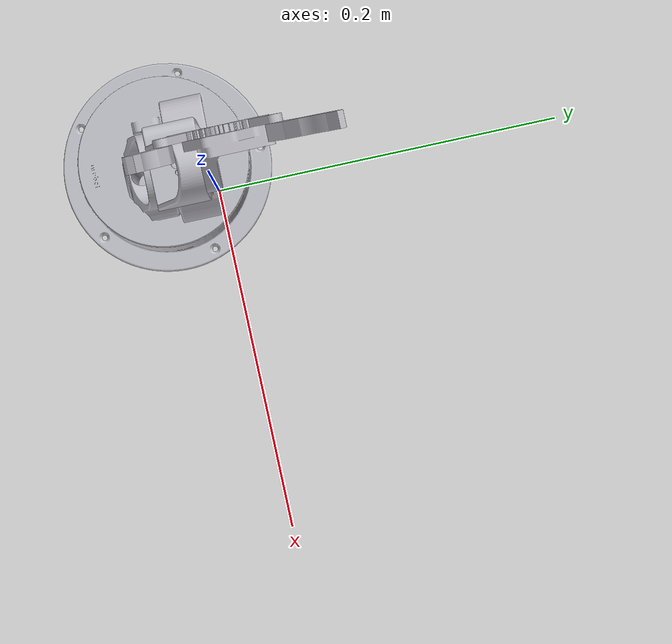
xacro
<?xml version="1.0" ?>
<robot name="robotic_arm" xmlns:xacro="http://www.ros.org/wiki/xacro">

<xacro:include filename="$(find robotic_arm_description)/urdf/materials.xacro" />
<xacro:include filename="$(find robotic_arm_description)/urdf/robotic_arm.trans" />
<xacro:include filename="$(find robotic_arm_description)/urdf/robotic_arm.gazebo" />

<link name="world">

</link>
<link name="base_link">
  <inertial>
    <origin xyz="-0.012591017413675576 -0.02625452248023994 0.01882692231493027" rpy="0 0 0"/>
    <mass value="0.15109268796453854"/>
    <inertia ixx="0.000155" iyy="0.000175" izz="0.000246" ixy="0.0" iyz="-1e-06" ixz="1.4e-05"/>
  </inertial>
  <visual>
    <origin xyz="0 0 0" rpy="0 0 0"/>
    <geometry>
      <mesh filename="package://robotic_arm_description/meshes/base_link.stl" scale="0.001 0.001 0.001"/>
    </geometry>
    <material name="silver"/>
  </visual>
  <collision>
    <origin xyz="0 0 0" rpy="0 0 0"/>
    <geometry>
      <mesh filename="package://robotic_arm_description/meshes/base_link.stl" scale="0.001 0.001 0.001"/>
    </geometry>
  </collision>
</link>
<joint name="fix_joint" type="fixed">
  <parent link="world"/>
  <child link="base_link"/>
</joint>
<link name="WAIST_1">
  <inertial>
    <origin xyz="0.0022441628498335066 0.007590344465981981 0.01877031829177992" rpy="0 0 0"/>
    <mass value="0.07662775042719305"/>
    <inertia ixx="5.2e-05" iyy="6.6e-05" izz="6e-05" ixy="-2e-06" iyz="-7e-06" ixz="-7e-06"/>
  </inertial>
  <visual>
    <origin xyz="0.019548 0.026486 -0.056" rpy="0 0 0"/>
    <geometry>
      <mesh filename="package://robotic_arm_description/meshes/WAIST_1.stl" scale="0.001 0.001 0.001"/>
    </geometry>
    <material name="silver"/>
  </visual>
  <collision>
    <origin xyz="0.019548 0.026486 -0.056" rpy="0 0 0"/>
    <geometry>
      <mesh filename="package://robotic_arm_description/meshes/WAIST_1.stl" scale="0.001 0.001 0.001"/>
    </geometry>
  </collision>
</link>

<link name="ARM_1_1">
  <inertial>
    <origin xyz="-0.0009032606766832757 -0.008109648473576453 0.05503482652373645" rpy="0 0 0"/>
    <mass value="0.0632866707153552"/>
    <inertia ixx="0.000123" iyy="0.000127" izz="9e-06" ixy="0.0" iyz="1e-06" ixz="-4e-06"/>
  </inertial>
  <visual>
    <origin xyz="0.005629 0.022537 -0.096277" rpy="0 0 0"/>
    <geometry>
      <mesh filename="package://robotic_arm_description/meshes/ARM_1_1.stl" scale="0.001 0.001 0.001"/>
    </geometry>
    <material name="silver"/>
  </visual>
  <collision>
    <origin xyz="0.005629 0.022537 -0.096277" rpy="0 0 0"/>
    <geometry>
      <mesh filename="package://robotic_arm_description/meshes/ARM_1_1.stl" scale="0.001 0.001 0.001"/>
    </geometry>
  </collision>
</link>

<link name="ARM_2_1">
  <inertial>
    <origin xyz="3.634368510697407e-05 0.009778981953459059 0.03809627169057139" rpy="0 0 0"/>
    <mass value="0.06035597163948405"/>
    <inertia ixx="6.7e-05" iyy="7.1e-05" izz="1.2e-05" ixy="-0.0" iyz="-1e-06" ixz="-0.0"/>
  </inertial>
  <visual>
    <origin xyz="0.005629 0.022537 -0.216277" rpy="0 0 0"/>
    <geometry>
      <mesh filename="package://robotic_arm_description/meshes/ARM_2_1.stl" scale="0.001 0.001 0.001"/>
    </geometry>
    <material name="silver"/>
  </visual>
  <collision>
    <origin xyz="0.005629 0.022537 -0.216277" rpy="0 0 0"/>
    <geometry>
      <mesh filename="package://robotic_arm_description/meshes/ARM_2_1.stl" scale="0.001 0.001 0.001"/>
    </geometry>
  </collision>
</link>

<link name="ARM_3_1">
  <inertial>
    <origin xyz="0.005059774534390374 0.005785393240177364 0.018265223108916318" rpy="0 0 0"/>
    <mass value="0.019243658186513544"/>
    <inertia ixx="5e-06" iyy="6e-06" izz="3e-06" ixy="0.0" iyz="-1e-06" ixz="0.0"/>
  </inertial>
  <visual>
    <origin xyz="0.000329 0.013037 -0.306027" rpy="0 0 0"/>
    <geometry>
      <mesh filename="package://robotic_arm_description/meshes/ARM_3_1.stl" scale="0.001 0.001 0.001"/>
    </geometry>
    <material name="silver"/>
  </visual>
  <collision>
    <origin xyz="0.000329 0.013037 -0.306027" rpy="0 0 0"/>
    <geometry>
      <mesh filename="package://robotic_arm_description/meshes/ARM_3_1.stl" scale="0.001 0.001 0.001"/>
    </geometry>
  </collision>
</link>

<link name="Gripper_base_v1_1">
  <inertial>
    <origin xyz="-0.0037420101480981063 0.0069768374118510095 0.023968262461229795" rpy="0 0 0"/>
    <mass value="0.016664690973765797"/>
    <inertia ixx="9e-06" iyy="8e-06" izz="3e-06" ixy="0.0" iyz="-2e-06" ixz="1e-06"/>
  </inertial>
  <visual>
    <origin xyz="-0.004671 -0.002963 -0.334027" rpy="0 0 0"/>
    <geometry>
      <mesh filename="package://robotic_arm_description/meshes/Gripper_base_v1_1.stl" scale="0.001 0.001 0.001"/>
    </geometry>
    <material name="silver"/>
  </visual>
  <collision>
    <origin xyz="-0.004671 -0.002963 -0.334027" rpy="0 0 0"/>
    <geometry>
      <mesh filename="package://robotic_arm_description/meshes/Gripper_base_v1_1.stl" scale="0.001 0.001 0.001"/>
    </geometry>
  </collision>
</link>

<link name="gear2_v1_1">
  <inertial>
    <origin xyz="-0.0015298699434045599 0.002079903777759018 0.0054590376304928245" rpy="0 0 0"/>
    <mass value="0.0027198112495044778"/>
    <inertia ixx="0.0" iyy="0.0" izz="0.0" ixy="-0.0" iyz="-0.0" ixz="-0.0"/>
  </inertial>
  <visual>
    <origin xyz="0.005964 -0.025863 -0.373102" rpy="0 0 0"/>
    <geometry>
      <mesh filename="package://robotic_arm_description/meshes/gear2_v1_1.stl" scale="0.001 0.001 0.001"/>
    </geometry>
    <material name="silver"/>
  </visual>
  <collision>
    <origin xyz="0.005964 -0.025863 -0.373102" rpy="0 0 0"/>
    <geometry>
      <mesh filename="package://robotic_arm_description/meshes/gear2_v1_1.stl" scale="0.001 0.001 0.001"/>
    </geometry>
  </collision>
</link>

<link name="gear1_v1_1">
  <inertial>
    <origin xyz="-0.0015382545410094145 -0.0020873383753474434 0.0053632012413317165" rpy="0 0 0"/>
    <mass value="0.0028001100817075224"/>
    <inertia ixx="0.0" iyy="0.0" izz="0.0" ixy="0.0" iyz="0.0" ixz="-0.0"/>
  </inertial>
  <visual>
    <origin xyz="0.005964 0.001037 -0.373102" rpy="0 0 0"/>
    <geometry>
      <mesh filename="package://robotic_arm_description/meshes/gear1_v1_1.stl" scale="0.001 0.001 0.001"/>
    </geometry>
    <material name="silver"/>
  </visual>
  <collision>
    <origin xyz="0.005964 0.001037 -0.373102" rpy="0 0 0"/>
    <geometry>
      <mesh filename="package://robotic_arm_description/meshes/gear1_v1_1.stl" scale="0.001 0.001 0.001"/>
    </geometry>
  </collision>
</link>

<link name="Gripper_1_v1_1">
  <inertial>
    <origin xyz="0.006301934432243404 0.013438856005631494 0.023263497807370692" rpy="0 0 0"/>
    <mass value="0.0057212708857542725"/>
    <inertia ixx="2e-06" iyy="1e-06" izz="1e-06" ixy="-0.0" iyz="-1e-06" ixz="-0.0"/>
  </inertial>
  <visual>
    <origin xyz="0.003587 -0.040062 -0.400274" rpy="0 0 0"/>
    <geometry>
      <mesh filename="package://robotic_arm_description/meshes/Gripper_1_v1_1.stl" scale="0.001 0.001 0.001"/>
    </geometry>
    <material name="silver"/>
  </visual>
  <collision>
    <origin xyz="0.003587 -0.040062 -0.400274" rpy="0 0 0"/>
    <geometry>
      <mesh filename="package://robotic_arm_description/meshes/Gripper_1_v1_1.stl" scale="0.001 0.001 0.001"/>
    </geometry>
  </collision>
</link>

<link name="Gripper_1_v1__1__1">
  <inertial>
    <origin xyz="0.006553144234267914 -0.005915445838265192 0.026144538460451006" rpy="0 0 0"/>
    <mass value="0.0057212708857542725"/>
    <inertia ixx="2e-06" iyy="2e-06" izz="0.0" ixy="0.0" iyz="0.0" ixz="-0.0"/>
  </inertial>
  <visual>
    <origin xyz="0.003597 0.015473 -0.40015" rpy="0 0 0"/>
    <geometry>
      <mesh filename="package://robotic_arm_description/meshes/Gripper_1_v1__1__1.stl" scale="0.001 0.001 0.001"/>
    </geometry>
    <material name="silver"/>
  </visual>
  <collision>
    <origin xyz="0.003597 0.015473 -0.40015" rpy="0 0 0"/>
    <geometry>
      <mesh filename="package://robotic_arm_description/meshes/Gripper_1_v1__1__1.stl" scale="0.001 0.001 0.001"/>
    </geometry>
  </collision>
</link>

<joint name="Rev1" type="continuous">
  <origin xyz="-0.019548 -0.026486 0.056" rpy="0 0 0"/>
  <parent link="base_link"/>
  <child link="WAIST_1"/>
  <axis xyz="0.0 -0.0 1.0"/>
</joint>

<joint name="Rev2" type="revolute">
  <origin xyz="0.013919 0.003949 0.040277" rpy="0 0 0"/>
  <parent link="WAIST_1"/>
  <child link="ARM_1_1"/>
  <axis xyz="0.0 -1.0 -0.0"/>
  <limit upper="1.658063" lower="-1.48353" effort="100" velocity="100"/>
</joint>

<joint name="Rev3" type="revolute">
  <origin xyz="0.0 0.0 0.12" rpy="0 0 0"/>
  <parent link="ARM_1_1"/>
  <child link="ARM_2_1"/>
  <axis xyz="-0.0 1.0 0.0"/>
  <limit upper="1.48353" lower="-1.22173" effort="100" velocity="100"/>
</joint>

<joint name="Rev4" type="continuous">
  <origin xyz="0.0053 0.0095 0.08975" rpy="0 0 0"/>
  <parent link="ARM_2_1"/>
  <child link="ARM_3_1"/>
  <axis xyz="-0.0 -0.0 1.0"/>
</joint>

<joint name="Rev30" type="revolute">
  <origin xyz="0.005 0.016 0.028" rpy="0 0 0"/>
  <parent link="ARM_3_1"/>
  <child link="Gripper_base_v1_1"/>
  <axis xyz="-0.0 1.0 0.0"/>
  <limit upper="1.832596" lower="-1.396263" effort="100" velocity="100"/>
</joint>

<joint name="Rev31" type="revolute">
  <origin xyz="-0.010635 0.0229 0.039075" rpy="0 0 0"/>
  <parent link="Gripper_base_v1_1"/>
  <child link="gear2_v1_1"/>
  <axis xyz="-0.996195 -0.0 0.087156"/>
  <limit upper="1.57" lower="-0.349066" effort="100" velocity="100"/>
</joint>

<joint name="Rev32" type="revolute">
  <origin xyz="-0.010635 -0.004 0.039075" rpy="0 0 0"/>
  <parent link="Gripper_base_v1_1"/>
  <child link="gear1_v1_1"/>
  <axis xyz="-0.996195 -0.0 0.087156"/>
  <limit upper="0.349066" lower="-1.57" effort="100" velocity="100"/>
</joint>

<joint name="Rigid36" type="fixed">
  <origin xyz="0.002377 0.014199 0.027172" rpy="0 0 0"/>
  <parent link="gear2_v1_1"/>
  <child link="Gripper_1_v1_1"/>
</joint>

<joint name="Rigid37" type="fixed">
  <origin xyz="0.002367 -0.014436 0.027048" rpy="0 0 0"/>
  <parent link="gear1_v1_1"/>
  <child link="Gripper_1_v1__1__1"/>
</joint>

</robot>

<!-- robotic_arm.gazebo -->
<robot name="robotic_arm" xmlns:xacro="http://www.ros.org/wiki/xacro" >

<xacro:property name="body_color" value="Gazebo/Silver" />

<gazebo>
  <plugin name="control" filename="libgazebo_ros_control.so"/>
</gazebo>
<gazebo>
  <plugin name="gazebo_grasp_fix" filename="libgazebo_grasp_fix.so">
    <arm>
      <arm_name>arm</arm_name>
      <palm_link>Gripper_base_v1_1</palm_link>
      <gripper_link>gear2_v1_1</gripper_link>
      <gripper_link>gear1_v1_1</gripper_link>
    </arm>
    <forces_angle_tolerance>100</forces_angle_tolerance>
    <update_rate>4</update_rate>
    <grip_count_threshold>4</grip_count_threshold>
    <max_grip_count>8</max_grip_count>
    <release_tolerance>0.005</release_tolerance>
    <disable_collisions_on_attach>false</disable_collisions_on_attach>
    <contact_topic>__default_topic__</contact_topic>
  </plugin>
</gazebo>

<gazebo reference="base_link">
  <material>${body_color}</material>
  <mu1>0.2</mu1>
  <mu2>0.2</mu2>
  <selfCollide>true</selfCollide>
  <gravity>true</gravity>
</gazebo>

<gazebo reference="WAIST_1">
  <material>${body_color}</material>
  <mu1>0.2</mu1>
  <mu2>0.2</mu2>
  <selfCollide>true</selfCollide>
</gazebo>

<gazebo reference="ARM_1_1">
  <material>${body_color}</material>
  <mu1>0.2</mu1>
  <mu2>0.2</mu2>
  <selfCollide>true</selfCollide>
</gazebo>

<gazebo reference="ARM_2_1">
  <material>${body_color}</material>
  <mu1>0.2</mu1>
  <mu2>0.2</mu2>
  <selfCollide>true</selfCollide>
</gazebo>

<gazebo reference="ARM_3_1">
  <material>${body_color}</material>
  <mu1>0.2</mu1>
  <mu2>0.2</mu2>
  <selfCollide>true</selfCollide>
</gazebo>

<gazebo reference="Gripper_base_v1_1">
  <material>${body_color}</material>
  <mu1>0.2</mu1>
  <mu2>0.2</mu2>
  <selfCollide>true</selfCollide>
</gazebo>

<gazebo reference="gear2_v1_1">
  <material>${body_color}</material>
  <mu1>0.2</mu1>
  <mu2>0.2</mu2>
  <selfCollide>true</selfCollide>
</gazebo>

<gazebo reference="gear1_v1_1">
  <material>${body_color}</material>
  <mu1>0.2</mu1>
  <mu2>0.2</mu2>
  <selfCollide>true</selfCollide>
</gazebo>

<gazebo reference="Gripper_1_v1_1">
  <material>${body_color}</material>
  <mu1>0.2</mu1>
  <mu2>0.2</mu2>
  <selfCollide>true</selfCollide>
</gazebo>

<gazebo reference="Gripper_1_v1__1__1">
  <material>${body_color}</material>
  <mu1>0.2</mu1>
  <mu2>0.2</mu2>
  <selfCollide>true</selfCollide>
</gazebo>

</robot>
